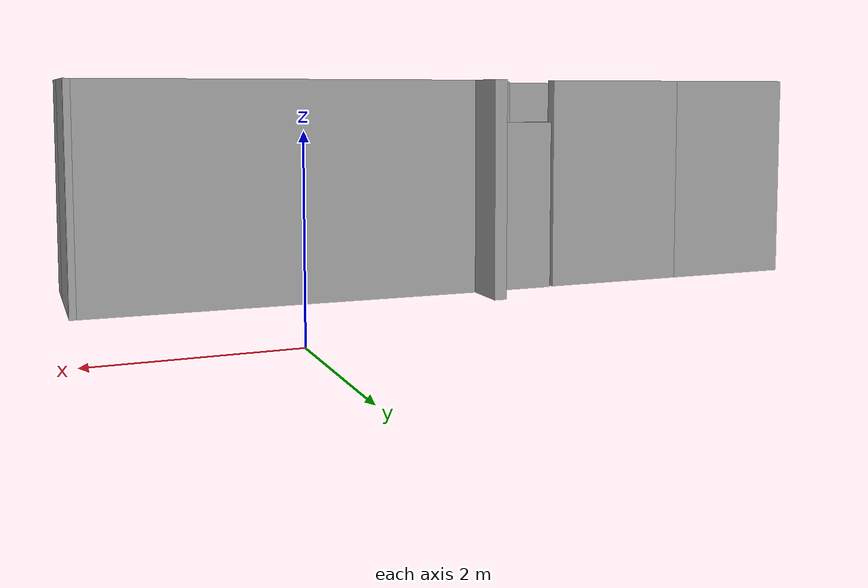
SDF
<?xml version='1.0'?>
<sdf version='1.7'>
  <model name='test_map'>
    <pose>-2.52936 -2.7875 0 0 -0 0</pose>
    <link name='Door_0'>
      <collision name='Door_0_Collision'>
        <geometry>
          <box>
            <size>0.9 0.17 2</size>
          </box>
        </geometry>
        <pose>0 0 1 0 -0 0</pose>
      </collision>
      <visual name='Door_0_Visual'>
        <pose>0 0 1 0 -0 0</pose>
        <geometry>
          <box>
            <size>0.9 0.17 2</size>
          </box>
        </geometry>
        <material>
          <script>
            <uri>file://media/materials/scripts/gazebo.material</uri>
            <name>Gazebo/Grey</name>
          </script>
        </material>
      </visual>
      <pose>-0.630644 0.6475 0 0 -0 0</pose>
    </link>
    <link name='Wall_0'>
      <collision name='Wall_0_Collision'>
        <geometry>
          <box>
            <size>1.75 0.15 2.5</size>
          </box>
        </geometry>
        <pose>0 0 1.25 0 -0 0</pose>
      </collision>
      <visual name='Wall_0_Visual'>
        <pose>0 0 1.25 0 -0 0</pose>
        <geometry>
          <box>
            <size>1.75 0.15 2.5</size>
          </box>
        </geometry>
        <material>
          <script>
            <uri>file://media/materials/scripts/gazebo.material</uri>
            <name>Gazebo/Grey</name>
          </script>
          <ambient>1 1 1 1</ambient>
        </material>
        <meta>
          <layer>0</layer>
        </meta>
      </visual>
      <pose>-2.00064 0.6375 0 0 -0 3.14159</pose>
    </link>
    <link name='Wall_1'>
      <collision name='Wall_1_Collision'>
        <geometry>
          <box>
            <size>1.75 0.15 2.5</size>
          </box>
        </geometry>
        <pose>0 0 1.25 0 -0 0</pose>
      </collision>
      <visual name='Wall_1_Visual'>
        <pose>0 0 1.25 0 -0 0</pose>
        <geometry>
          <box>
            <size>1.75 0.15 2.5</size>
          </box>
        </geometry>
        <material>
          <script>
            <uri>file://media/materials/scripts/gazebo.material</uri>
            <name>Gazebo/Grey</name>
          </script>
          <ambient>1 1 1 1</ambient>
        </material>
        <meta>
          <layer>0</layer>
        </meta>
      </visual>
      <pose>-3.60064 0.6375 0 0 -0 3.14159</pose>
    </link>
    <link name='Wall_10'>
      <collision name='Wall_10_Collision'>
        <geometry>
          <box>
            <size>0.75 0.15 2.5</size>
          </box>
        </geometry>
        <pose>0 0 1.25 0 -0 0</pose>
      </collision>
      <visual name='Wall_10_Visual'>
        <pose>0 0 1.25 0 -0 0</pose>
        <geometry>
          <box>
            <size>0.75 0.15 2.5</size>
          </box>
        </geometry>
        <material>
          <script>
            <uri>file://media/materials/scripts/gazebo.material</uri>
            <name>Gazebo/Grey</name>
          </script>
          <ambient>1 1 1 1</ambient>
        </material>
        <meta>
          <layer>0</layer>
        </meta>
      </visual>
      <pose>-0.160644 0.9075 0 0 -0 1.5708</pose>
    </link>
    <link name='Wall_2'>
      <collision name='Wall_2_Collision'>
        <geometry>
          <box>
            <size>3.5 0.15 2.5</size>
          </box>
        </geometry>
        <pose>0 0 1.25 0 -0 0</pose>
      </collision>
      <visual name='Wall_2_Visual'>
        <pose>0 0 1.25 0 -0 0</pose>
        <geometry>
          <box>
            <size>3.5 0.15 2.5</size>
          </box>
        </geometry>
        <material>
          <script>
            <uri>file://media/materials/scripts/gazebo.material</uri>
            <name>Gazebo/Grey</name>
          </script>
          <ambient>1 1 1 1</ambient>
        </material>
        <meta>
          <layer>0</layer>
        </meta>
      </visual>
      <pose>-4.40064 -1.0375 0 0 -0 -1.5708</pose>
    </link>
    <link name='Wall_3'>
      <collision name='Wall_3_Collision'>
        <geometry>
          <box>
            <size>3.25 0.15 2.5</size>
          </box>
        </geometry>
        <pose>0 0 1.25 0 -0 0</pose>
      </collision>
      <visual name='Wall_3_Visual'>
        <pose>0 0 1.25 0 -0 0</pose>
        <geometry>
          <box>
            <size>3.25 0.15 2.5</size>
          </box>
        </geometry>
        <material>
          <script>
            <uri>file://media/materials/scripts/gazebo.material</uri>
            <name>Gazebo/Grey</name>
          </script>
          <ambient>1 1 1 1</ambient>
        </material>
        <meta>
          <layer>0</layer>
        </meta>
      </visual>
      <pose>-2.85064 -2.7125 0 0 -0 0</pose>
    </link>
    <link name='Wall_4'>
      <collision name='Wall_4_Collision'>
        <geometry>
          <box>
            <size>1.75 0.15 2.5</size>
          </box>
        </geometry>
        <pose>0 0 1.25 0 -0 0</pose>
      </collision>
      <visual name='Wall_4_Visual'>
        <pose>0 0 1.25 0 -0 0</pose>
        <geometry>
          <box>
            <size>1.75 0.15 2.5</size>
          </box>
        </geometry>
        <material>
          <script>
            <uri>file://media/materials/scripts/gazebo.material</uri>
            <name>Gazebo/Grey</name>
          </script>
          <ambient>1 1 1 1</ambient>
        </material>
        <meta>
          <layer>0</layer>
        </meta>
      </visual>
      <pose>-1.30064 -1.9125 0 0 -0 1.5708</pose>
    </link>
    <link name='Wall_5'>
      <collision name='Wall_5_Collision'>
        <geometry>
          <box>
            <size>2.5 0.15 2.5</size>
          </box>
        </geometry>
        <pose>0 0 1.25 0 -0 0</pose>
      </collision>
      <visual name='Wall_5_Visual'>
        <pose>0 0 1.25 0 -0 0</pose>
        <geometry>
          <box>
            <size>2.5 0.15 2.5</size>
          </box>
        </geometry>
        <material>
          <script>
            <uri>file://media/materials/scripts/gazebo.material</uri>
            <name>Gazebo/Grey</name>
          </script>
          <ambient>1 1 1 1</ambient>
        </material>
        <meta>
          <layer>0</layer>
        </meta>
      </visual>
      <pose>-0.125644 -1.1125 0 0 -0 0</pose>
    </link>
    <link name='Wall_6'>
      <collision name='Wall_6_Collision'>
        <geometry>
          <box>
            <size>3.5 0.15 2.5</size>
          </box>
        </geometry>
        <pose>0 0 1.25 0 -0 0</pose>
      </collision>
      <visual name='Wall_6_Visual'>
        <pose>0 0 1.25 0 -0 0</pose>
        <geometry>
          <box>
            <size>3.5 0.15 2.5</size>
          </box>
        </geometry>
        <material>
          <script>
            <uri>file://media/materials/scripts/gazebo.material</uri>
            <name>Gazebo/Grey</name>
          </script>
          <ambient>1 1 1 1</ambient>
        </material>
        <meta>
          <layer>0</layer>
        </meta>
      </visual>
      <pose>2.72436 -1.1125 0 0 -0 0</pose>
    </link>
    <link name='Wall_7'>
      <collision name='Wall_7_Collision'>
        <geometry>
          <box>
            <size>0.75 0.15 2.5</size>
          </box>
        </geometry>
        <pose>0 0 1.25 0 -0 0</pose>
      </collision>
      <visual name='Wall_7_Visual'>
        <pose>0 0 1.25 0 -0 0</pose>
        <geometry>
          <box>
            <size>0.75 0.15 2.5</size>
          </box>
        </geometry>
        <material>
          <script>
            <uri>file://media/materials/scripts/gazebo.material</uri>
            <name>Gazebo/Grey</name>
          </script>
          <ambient>1 1 1 1</ambient>
        </material>
        <meta>
          <layer>0</layer>
        </meta>
      </visual>
      <pose>4.39936 -0.8125 0 0 -0 1.5708</pose>
    </link>
    <link name='Wall_8'>
      <collision name='Wall_8_Collision'>
        <geometry>
          <box>
            <size>1.25 0.15 2.5</size>
          </box>
        </geometry>
        <pose>0 0 1.25 0 -0 0</pose>
      </collision>
      <visual name='Wall_8_Visual'>
        <pose>0 0 1.25 0 -0 0</pose>
        <geometry>
          <box>
            <size>1.25 0.15 2.5</size>
          </box>
        </geometry>
        <material>
          <script>
            <uri>file://media/materials/scripts/gazebo.material</uri>
            <name>Gazebo/Grey</name>
          </script>
          <ambient>1 1 1 1</ambient>
        </material>
        <meta>
          <layer>0</layer>
        </meta>
      </visual>
      <pose>4.39936 0.0375 0 0 -0 1.5708</pose>
    </link>
    <link name='Wall_9'>
      <collision name='Wall_9_Collision'>
        <geometry>
          <box>
            <size>4.77069 0.15 2.5</size>
          </box>
        </geometry>
        <pose>0 0 1.25 0 -0 0</pose>
      </collision>
      <visual name='Wall_9_Visual'>
        <pose>0 0 1.25 0 -0 0</pose>
        <geometry>
          <box>
            <size>4.77069 0.15 2.5</size>
          </box>
        </geometry>
        <material>
          <script>
            <uri>file://media/materials/scripts/gazebo.material</uri>
            <name>Gazebo/Grey</name>
          </script>
          <ambient>1 1 1 1</ambient>
        </material>
        <meta>
          <layer>0</layer>
        </meta>
      </visual>
      <pose>2.08936 0.6275 0 0 -0 3.12428</pose>
    </link>
    <static>1</static>
  </model>
</sdf>
